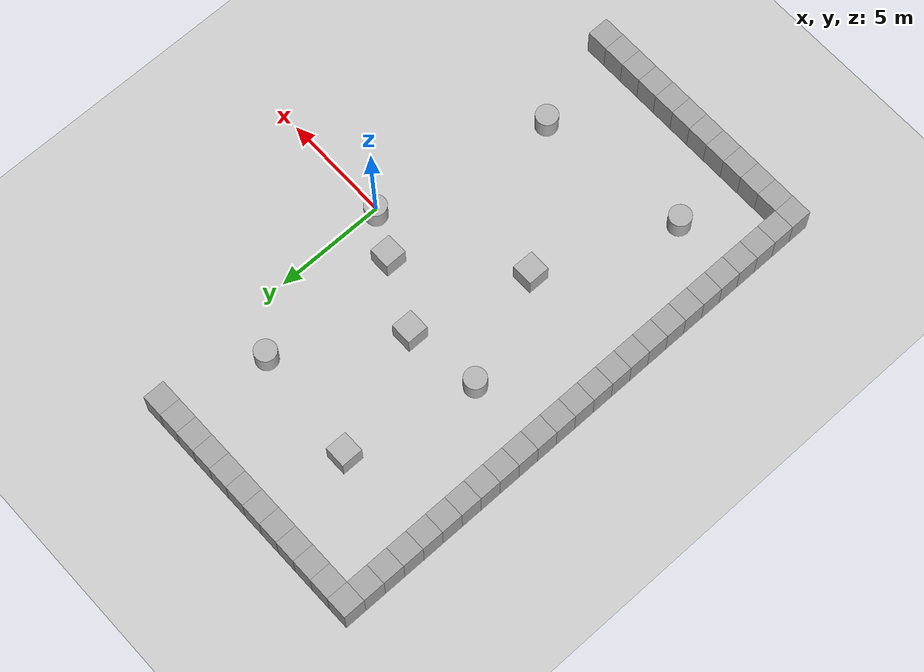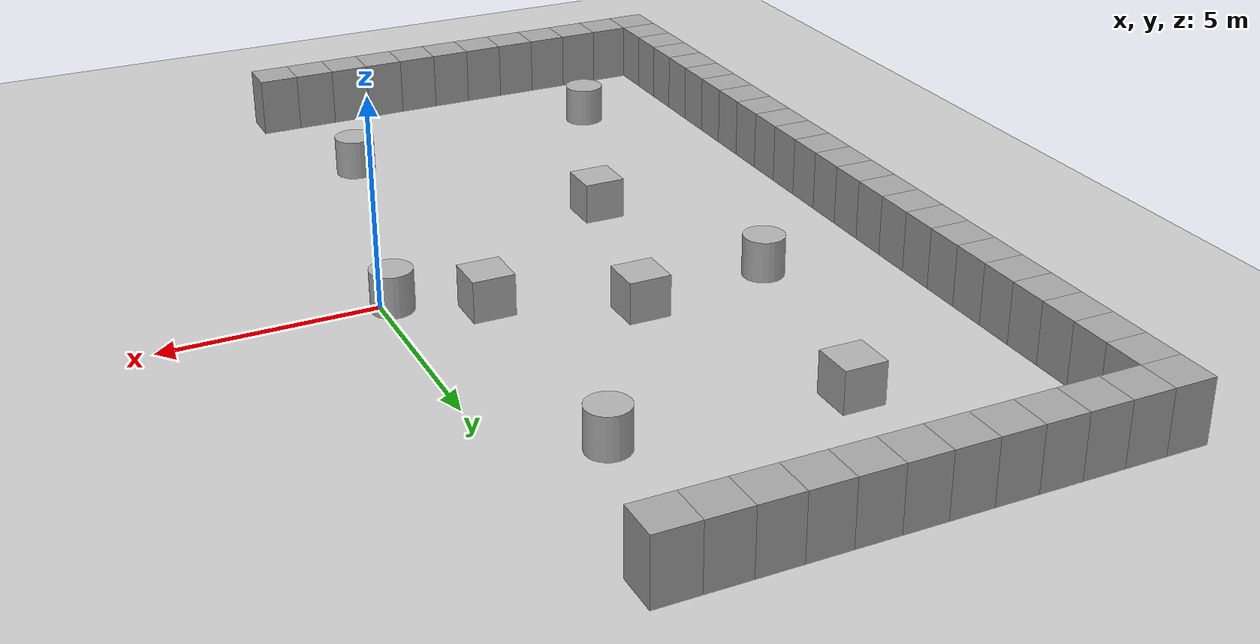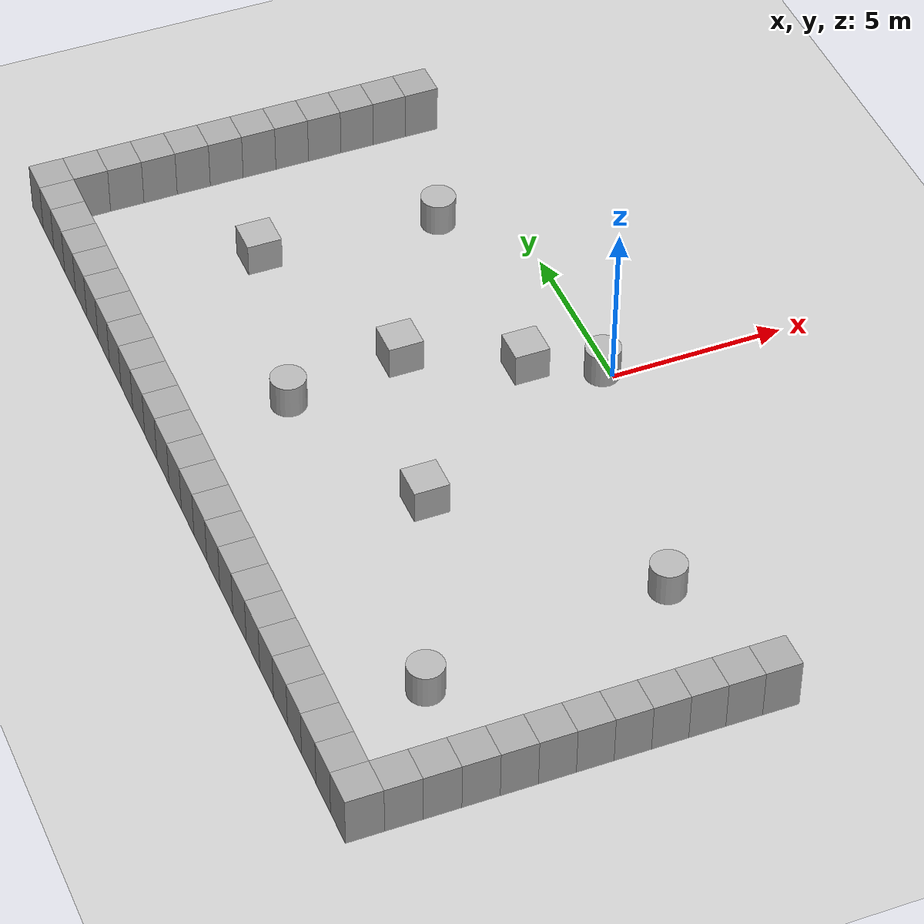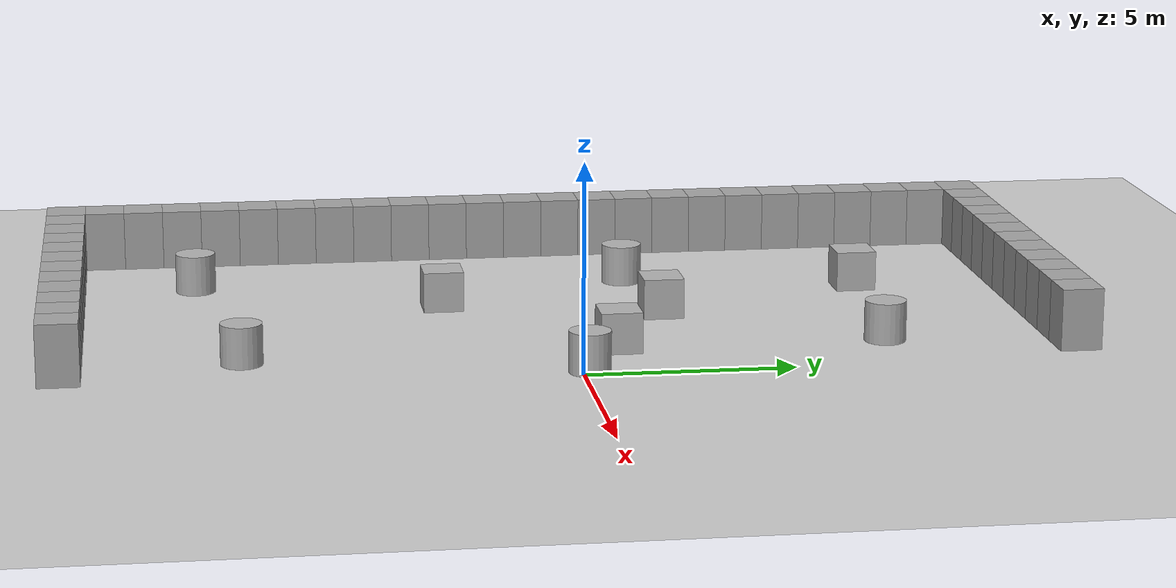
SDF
<sdf version="1.10">
 <world name="empty">
  <model name="ground_plane">
   <static>true</static>
   <link name="link">
    <collision name="collision">
     <geometry><plane><normal>0 0 1</normal><size>100 100</size></plane></geometry>
    </collision>
    <visual name="visual">
     <geometry><plane><normal>0 0 1</normal><size>100 100</size></plane></geometry>
     <material>
      <ambient>0.800000012 0.800000012 0.800000012 1</ambient>
      <diffuse>0.800000012 0.800000012 0.800000012 1</diffuse>
      <specular>0.800000012 0.800000012 0.800000012 1</specular>
     </material>
    </visual>
    <inertial>
     <mass>1</mass>
     <inertia><ixx>1</ixx><ixy>0</ixy><ixz>0</ixz><iyy>1</iyy><iyz>0</iyz><izz>1</izz></inertia>
    </inertial>
   </link>
  </model>
  <model name="box">
   <pose>-7.2664229478641413 8.001959563005741 0.5 0 0 0</pose>
   <link name="box_link">
    <inertial>
     <inertia><ixx>0.16666</ixx><ixy>0</ixy><ixz>0</ixz><iyy>0.16666</iyy><iyz>0</iyz><izz>0.16666</izz></inertia>
     <mass>1</mass>
    </inertial>
    <collision name="box_collision"><geometry><box><size>1 1 1</size></box></geometry></collision>
    <visual name="box_visual">
     <geometry><box><size>1 1 1</size></box></geometry>
     <material>
      <ambient>0.300000012 0.300000012 0.300000012 1</ambient>
      <diffuse>0.699999988 0.699999988 0.699999988 1</diffuse>
      <specular>1 1 1 1</specular>
     </material>
    </visual>
   </link>
   <static>false</static>
  </model>
  <model name="box_1_1">
   <pose>-2.0925876761833555 1.1406302052938266 0.5 0 0 0</pose>
   <link name="box_link">
    <inertial>
     <inertia><ixx>0.16666</ixx><ixy>0</ixy><ixz>0</ixz><iyy>0.16666</iyy><iyz>0</iyz><izz>0.16666</izz></inertia>
     <mass>1</mass>
    </inertial>
    <collision name="box_collision"><geometry><box><size>1 1 1</size></box></geometry></collision>
    <visual name="box_visual">
     <geometry><box><size>1 1 1</size></box></geometry>
     <material>
      <ambient>0.300000012 0.300000012 0.300000012 1</ambient>
      <diffuse>0.699999988 0.699999988 0.699999988 1</diffuse>
      <specular>1 1 1 1</specular>
     </material>
    </visual>
   </link>
   <static>false</static>
  </model>
  <model name="box_1_4">
   <pose>-6.5208503423678597 -2.643676608655257 0.5 0 0 0</pose>
   <link name="box_link">
    <inertial>
     <inertia><ixx>0.16666</ixx><ixy>0</ixy><ixz>0</ixz><iyy>0.16666</iyy><iyz>0</iyz><izz>0.16666</izz></inertia>
     <mass>1</mass>
    </inertial>
    <collision name="box_collision"><geometry><box><size>1 1 1</size></box></geometry></collision>
    <visual name="box_visual">
     <geometry><box><size>1 1 1</size></box></geometry>
     <material>
      <ambient>0.300000012 0.300000012 0.300000012 1</ambient>
      <diffuse>0.699999988 0.699999988 0.699999988 1</diffuse>
      <specular>1 1 1 1</specular>
     </material>
    </visual>
   </link>
   <static>false</static>
  </model>
  <model name="box_1_5">
   <pose>-5.1389123843084468 2.6679012426387785 0.5 0 0 0</pose>
   <link name="box_link">
    <inertial>
     <inertia><ixx>0.16666</ixx><ixy>0</ixy><ixz>0</ixz><iyy>0.16666</iyy><iyz>0</iyz><izz>0.16666</izz></inertia>
     <mass>1</mass>
    </inertial>
    <collision name="box_collision"><geometry><box><size>1 1 1</size></box></geometry></collision>
    <visual name="box_visual">
     <geometry><box><size>1 1 1</size></box></geometry>
     <material>
      <ambient>0.300000012 0.300000012 0.300000012 1</ambient>
      <diffuse>0.699999988 0.699999988 0.699999988 1</diffuse>
      <specular>1 1 1 1</specular>
     </material>
    </visual>
   </link>
   <static>false</static>
  </model>
  <model name="cylinder">
   <pose>-2.0379437450152151 7.5994624848365868 0.5 0 0 0</pose>
   <link name="cylinder_link">
    <inertial>
     <inertia>
      <ixx>0.14580000000000001</ixx>
      <ixy>0</ixy>
      <ixz>0</ixz>
      <iyy>0.14580000000000001</iyy>
      <iyz>0</iyz>
      <izz>0.125</izz>
     </inertia>
     <mass>1</mass>
    </inertial>
    <collision name="cylinder_collision">
     <geometry><cylinder><radius>0.5</radius><length>1</length></cylinder></geometry>
    </collision>
    <visual name="cylinder_visual">
     <geometry><cylinder><radius>0.5</radius><length>1</length></cylinder></geometry>
     <material>
      <ambient>0.300000012 0.300000012 0.300000012 1</ambient>
      <diffuse>0.699999988 0.699999988 0.699999988 1</diffuse>
      <specular>1 1 1 1</specular>
     </material>
    </visual>
   </link>
   <static>false</static>
  </model>
  <model name="cylinder_1">
   <pose>-8.5217671879853594 2.201041515387407 0.5 0 0 0</pose>
   <link name="cylinder_link">
    <inertial>
     <inertia>
      <ixx>0.14580000000000001</ixx>
      <ixy>0</ixy>
      <ixz>0</ixz>
      <iyy>0.14580000000000001</iyy>
      <iyz>0</iyz>
      <izz>0.125</izz>
     </inertia>
     <mass>1</mass>
    </inertial>
    <collision name="cylinder_collision">
     <geometry><cylinder><radius>0.5</radius><length>1</length></cylinder></geometry>
    </collision>
    <visual name="cylinder_visual">
     <geometry><cylinder><radius>0.5</radius><length>1</length></cylinder></geometry>
     <material>
      <ambient>0.300000012 0.300000012 0.300000012 1</ambient>
      <diffuse>0.699999988 0.699999988 0.699999988 1</diffuse>
      <specular>1 1 1 1</specular>
     </material>
    </visual>
   </link>
   <static>false</static>
  </model>
  <model name="cylinder_2">
   <pose>-1.9285283423070976 -7.792672292694327 0.5 0 0 0</pose>
   <link name="cylinder_link">
    <inertial>
     <inertia>
      <ixx>0.14580000000000001</ixx>
      <ixy>0</ixy>
      <ixz>0</ixz>
      <iyy>0.14580000000000001</iyy>
      <iyz>0</iyz>
      <izz>0.125</izz>
     </inertia>
     <mass>1</mass>
    </inertial>
    <collision name="cylinder_collision">
     <geometry><cylinder><radius>0.5</radius><length>1</length></cylinder></geometry>
    </collision>
    <visual name="cylinder_visual">
     <geometry><cylinder><radius>0.5</radius><length>1</length></cylinder></geometry>
     <material>
      <ambient>0.300000012 0.300000012 0.300000012 1</ambient>
      <diffuse>0.699999988 0.699999988 0.699999988 1</diffuse>
      <specular>1 1 1 1</specular>
     </material>
    </visual>
   </link>
   <static>false</static>
  </model>
  <model name="cylinder_3">
   <pose>-0.23170090689891465 0.17372997756641428 0.5 0 0 0</pose>
   <link name="cylinder_link">
    <inertial>
     <inertia>
      <ixx>0.14580000000000001</ixx>
      <ixy>0</ixy>
      <ixz>0</ixz>
      <iyy>0.14580000000000001</iyy>
      <iyz>0</iyz>
      <izz>0.125</izz>
     </inertia>
     <mass>1</mass>
    </inertial>
    <collision name="cylinder_collision">
     <geometry><cylinder><radius>0.5</radius><length>1</length></cylinder></geometry>
    </collision>
    <visual name="cylinder_visual">
     <geometry><cylinder><radius>0.5</radius><length>1</length></cylinder></geometry>
     <material>
      <ambient>0.300000012 0.300000012 0.300000012 1</ambient>
      <diffuse>0.699999988 0.699999988 0.699999988 1</diffuse>
      <specular>1 1 1 1</specular>
     </material>
    </visual>
   </link>
   <static>false</static>
  </model>
  <model name="cylinder_5">
   <pose>-8.9233435822444385 -8.7101261716177483 0.5 0 0 0</pose>
   <link name="cylinder_link">
    <inertial>
     <inertia>
      <ixx>0.14580000000000001</ixx>
      <ixy>0</ixy>
      <ixz>0</ixz>
      <iyy>0.14580000000000001</iyy>
      <iyz>0</iyz>
      <izz>0.125</izz>
     </inertia>
     <mass>1</mass>
    </inertial>
    <collision name="cylinder_collision">
     <geometry><cylinder><radius>0.5</radius><length>1</length></cylinder></geometry>
    </collision>
    <visual name="cylinder_visual">
     <geometry><cylinder><radius>0.5</radius><length>1</length></cylinder></geometry>
     <material>
      <ambient>0.300000012 0.300000012 0.300000012 1</ambient>
      <diffuse>0.699999988 0.699999988 0.699999988 1</diffuse>
      <specular>1 1 1 1</specular>
     </material>
    </visual>
   </link>
   <static>false</static>
  </model>
  <model name="wall_box_0">
   <static>true</static>
   <pose>-12.0 -12.0 0.75 0 0 0</pose>
   <link name="link">
    <collision name="collision"><geometry><box><size>1.0 1.0 1.5</size></box></geometry></collision>
    <visual name="visual">
     <geometry><box><size>1.0 1.0 1.5</size></box></geometry>
     <material>
      <ambient>0.55 0.55 0.55 1</ambient>
      <diffuse>0.65 0.65 0.65 1</diffuse>
      <specular>0.3 0.3 0.3 1</specular>
     </material>
    </visual>
   </link>
  </model>
  <model name="wall_box_1">
   <static>true</static>
   <pose>-12.0 -11.0 0.75 0 0 0</pose>
   <link name="link">
    <collision name="collision"><geometry><box><size>1.0 1.0 1.5</size></box></geometry></collision>
    <visual name="visual">
     <geometry><box><size>1.0 1.0 1.5</size></box></geometry>
     <material>
      <ambient>0.55 0.55 0.55 1</ambient>
      <diffuse>0.65 0.65 0.65 1</diffuse>
      <specular>0.3 0.3 0.3 1</specular>
     </material>
    </visual>
   </link>
  </model>
  <model name="wall_box_2">
   <static>true</static>
   <pose>-12.0 -10.0 0.75 0 0 0</pose>
   <link name="link">
    <collision name="collision"><geometry><box><size>1.0 1.0 1.5</size></box></geometry></collision>
    <visual name="visual">
     <geometry><box><size>1.0 1.0 1.5</size></box></geometry>
     <material>
      <ambient>0.55 0.55 0.55 1</ambient>
      <diffuse>0.65 0.65 0.65 1</diffuse>
      <specular>0.3 0.3 0.3 1</specular>
     </material>
    </visual>
   </link>
  </model>
  <model name="wall_box_3">
   <static>true</static>
   <pose>-12.0 -9.0 0.75 0 0 0</pose>
   <link name="link">
    <collision name="collision"><geometry><box><size>1.0 1.0 1.5</size></box></geometry></collision>
    <visual name="visual">
     <geometry><box><size>1.0 1.0 1.5</size></box></geometry>
     <material>
      <ambient>0.55 0.55 0.55 1</ambient>
      <diffuse>0.65 0.65 0.65 1</diffuse>
      <specular>0.3 0.3 0.3 1</specular>
     </material>
    </visual>
   </link>
  </model>
  <model name="wall_box_4">
   <static>true</static>
   <pose>-12.0 -8.0 0.75 0 0 0</pose>
   <link name="link">
    <collision name="collision"><geometry><box><size>1.0 1.0 1.5</size></box></geometry></collision>
    <visual name="visual">
     <geometry><box><size>1.0 1.0 1.5</size></box></geometry>
     <material>
      <ambient>0.55 0.55 0.55 1</ambient>
      <diffuse>0.65 0.65 0.65 1</diffuse>
      <specular>0.3 0.3 0.3 1</specular>
     </material>
    </visual>
   </link>
  </model>
  <model name="wall_box_5">
   <static>true</static>
   <pose>-12.0 -7.0 0.75 0 0 0</pose>
   <link name="link">
    <collision name="collision"><geometry><box><size>1.0 1.0 1.5</size></box></geometry></collision>
    <visual name="visual">
     <geometry><box><size>1.0 1.0 1.5</size></box></geometry>
     <material>
      <ambient>0.55 0.55 0.55 1</ambient>
      <diffuse>0.65 0.65 0.65 1</diffuse>
      <specular>0.3 0.3 0.3 1</specular>
     </material>
    </visual>
   </link>
  </model>
  <model name="wall_box_6">
   <static>true</static>
   <pose>-12.0 -6.0 0.75 0 0 0</pose>
   <link name="link">
    <collision name="collision"><geometry><box><size>1.0 1.0 1.5</size></box></geometry></collision>
    <visual name="visual">
     <geometry><box><size>1.0 1.0 1.5</size></box></geometry>
     <material>
      <ambient>0.55 0.55 0.55 1</ambient>
      <diffuse>0.65 0.65 0.65 1</diffuse>
      <specular>0.3 0.3 0.3 1</specular>
     </material>
    </visual>
   </link>
  </model>
  <model name="wall_box_7">
   <static>true</static>
   <pose>-12.0 -5.0 0.75 0 0 0</pose>
   <link name="link">
    <collision name="collision"><geometry><box><size>1.0 1.0 1.5</size></box></geometry></collision>
    <visual name="visual">
     <geometry><box><size>1.0 1.0 1.5</size></box></geometry>
     <material>
      <ambient>0.55 0.55 0.55 1</ambient>
      <diffuse>0.65 0.65 0.65 1</diffuse>
      <specular>0.3 0.3 0.3 1</specular>
     </material>
    </visual>
   </link>
  </model>
  <model name="wall_box_8">
   <static>true</static>
   <pose>-12.0 -4.0 0.75 0 0 0</pose>
   <link name="link">
    <collision name="collision"><geometry><box><size>1.0 1.0 1.5</size></box></geometry></collision>
    <visual name="visual">
     <geometry><box><size>1.0 1.0 1.5</size></box></geometry>
     <material>
      <ambient>0.55 0.55 0.55 1</ambient>
      <diffuse>0.65 0.65 0.65 1</diffuse>
      <specular>0.3 0.3 0.3 1</specular>
     </material>
    </visual>
   </link>
  </model>
  <model name="wall_box_9">
   <static>true</static>
   <pose>-12.0 -3.0 0.75 0 0 0</pose>
   <link name="link">
    <collision name="collision"><geometry><box><size>1.0 1.0 1.5</size></box></geometry></collision>
    <visual name="visual">
     <geometry><box><size>1.0 1.0 1.5</size></box></geometry>
     <material>
      <ambient>0.55 0.55 0.55 1</ambient>
      <diffuse>0.65 0.65 0.65 1</diffuse>
      <specular>0.3 0.3 0.3 1</specular>
     </material>
    </visual>
   </link>
  </model>
  <model name="wall_box_10">
   <static>true</static>
   <pose>-12.0 -2.0 0.75 0 0 0</pose>
   <link name="link">
    <collision name="collision"><geometry><box><size>1.0 1.0 1.5</size></box></geometry></collision>
    <visual name="visual">
     <geometry><box><size>1.0 1.0 1.5</size></box></geometry>
     <material>
      <ambient>0.55 0.55 0.55 1</ambient>
      <diffuse>0.65 0.65 0.65 1</diffuse>
      <specular>0.3 0.3 0.3 1</specular>
     </material>
    </visual>
   </link>
  </model>
  <model name="wall_box_11">
   <static>true</static>
   <pose>-12.0 -1.0 0.75 0 0 0</pose>
   <link name="link">
    <collision name="collision"><geometry><box><size>1.0 1.0 1.5</size></box></geometry></collision>
    <visual name="visual">
     <geometry><box><size>1.0 1.0 1.5</size></box></geometry>
     <material>
      <ambient>0.55 0.55 0.55 1</ambient>
      <diffuse>0.65 0.65 0.65 1</diffuse>
      <specular>0.3 0.3 0.3 1</specular>
     </material>
    </visual>
   </link>
  </model>
  <model name="wall_box_12">
   <static>true</static>
   <pose>-12.0 0.0 0.75 0 0 0</pose>
   <link name="link">
    <collision name="collision"><geometry><box><size>1.0 1.0 1.5</size></box></geometry></collision>
    <visual name="visual">
     <geometry><box><size>1.0 1.0 1.5</size></box></geometry>
     <material>
      <ambient>0.55 0.55 0.55 1</ambient>
      <diffuse>0.65 0.65 0.65 1</diffuse>
      <specular>0.3 0.3 0.3 1</specular>
     </material>
    </visual>
   </link>
  </model>
  <model name="wall_box_13">
   <static>true</static>
   <pose>-12.0 1.0 0.75 0 0 0</pose>
   <link name="link">
    <collision name="collision"><geometry><box><size>1.0 1.0 1.5</size></box></geometry></collision>
    <visual name="visual">
     <geometry><box><size>1.0 1.0 1.5</size></box></geometry>
     <material>
      <ambient>0.55 0.55 0.55 1</ambient>
      <diffuse>0.65 0.65 0.65 1</diffuse>
      <specular>0.3 0.3 0.3 1</specular>
     </material>
    </visual>
   </link>
  </model>
  <model name="wall_box_14">
   <static>true</static>
   <pose>-12.0 2.0 0.75 0 0 0</pose>
   <link name="link">
    <collision name="collision"><geometry><box><size>1.0 1.0 1.5</size></box></geometry></collision>
    <visual name="visual">
     <geometry><box><size>1.0 1.0 1.5</size></box></geometry>
     <material>
      <ambient>0.55 0.55 0.55 1</ambient>
      <diffuse>0.65 0.65 0.65 1</diffuse>
      <specular>0.3 0.3 0.3 1</specular>
     </material>
    </visual>
   </link>
  </model>
  <model name="wall_box_15">
   <static>true</static>
   <pose>-12.0 3.0 0.75 0 0 0</pose>
   <link name="link">
    <collision name="collision"><geometry><box><size>1.0 1.0 1.5</size></box></geometry></collision>
    <visual name="visual">
     <geometry><box><size>1.0 1.0 1.5</size></box></geometry>
     <material>
      <ambient>0.55 0.55 0.55 1</ambient>
      <diffuse>0.65 0.65 0.65 1</diffuse>
      <specular>0.3 0.3 0.3 1</specular>
     </material>
    </visual>
   </link>
  </model>
  <model name="wall_box_16">
   <static>true</static>
   <pose>-12.0 4.0 0.75 0 0 0</pose>
   <link name="link">
    <collision name="collision"><geometry><box><size>1.0 1.0 1.5</size></box></geometry></collision>
    <visual name="visual">
     <geometry><box><size>1.0 1.0 1.5</size></box></geometry>
     <material>
      <ambient>0.55 0.55 0.55 1</ambient>
      <diffuse>0.65 0.65 0.65 1</diffuse>
      <specular>0.3 0.3 0.3 1</specular>
     </material>
    </visual>
   </link>
  </model>
  <model name="wall_box_17">
   <static>true</static>
   <pose>-12.0 5.0 0.75 0 0 0</pose>
   <link name="link">
    <collision name="collision"><geometry><box><size>1.0 1.0 1.5</size></box></geometry></collision>
    <visual name="visual">
     <geometry><box><size>1.0 1.0 1.5</size></box></geometry>
     <material>
      <ambient>0.55 0.55 0.55 1</ambient>
      <diffuse>0.65 0.65 0.65 1</diffuse>
      <specular>0.3 0.3 0.3 1</specular>
     </material>
    </visual>
   </link>
  </model>
  <model name="wall_box_18">
   <static>true</static>
   <pose>-12.0 6.0 0.75 0 0 0</pose>
   <link name="link">
    <collision name="collision"><geometry><box><size>1.0 1.0 1.5</size></box></geometry></collision>
    <visual name="visual">
     <geometry><box><size>1.0 1.0 1.5</size></box></geometry>
     <material>
      <ambient>0.55 0.55 0.55 1</ambient>
      <diffuse>0.65 0.65 0.65 1</diffuse>
      <specular>0.3 0.3 0.3 1</specular>
     </material>
    </visual>
   </link>
  </model>
  <model name="wall_box_19">
   <static>true</static>
   <pose>-12.0 7.0 0.75 0 0 0</pose>
   <link name="link">
    <collision name="collision"><geometry><box><size>1.0 1.0 1.5</size></box></geometry></collision>
    <visual name="visual">
     <geometry><box><size>1.0 1.0 1.5</size></box></geometry>
     <material>
      <ambient>0.55 0.55 0.55 1</ambient>
      <diffuse>0.65 0.65 0.65 1</diffuse>
      <specular>0.3 0.3 0.3 1</specular>
     </material>
    </visual>
   </link>
  </model>
  <model name="wall_box_20">
   <static>true</static>
   <pose>-12.0 8.0 0.75 0 0 0</pose>
   <link name="link">
    <collision name="collision"><geometry><box><size>1.0 1.0 1.5</size></box></geometry></collision>
    <visual name="visual">
     <geometry><box><size>1.0 1.0 1.5</size></box></geometry>
     <material>
      <ambient>0.55 0.55 0.55 1</ambient>
      <diffuse>0.65 0.65 0.65 1</diffuse>
      <specular>0.3 0.3 0.3 1</specular>
     </material>
    </visual>
   </link>
  </model>
  <model name="wall_box_21">
   <static>true</static>
   <pose>-12.0 9.0 0.75 0 0 0</pose>
   <link name="link">
    <collision name="collision"><geometry><box><size>1.0 1.0 1.5</size></box></geometry></collision>
    <visual name="visual">
     <geometry><box><size>1.0 1.0 1.5</size></box></geometry>
     <material>
      <ambient>0.55 0.55 0.55 1</ambient>
      <diffuse>0.65 0.65 0.65 1</diffuse>
      <specular>0.3 0.3 0.3 1</specular>
     </material>
    </visual>
   </link>
  </model>
  <model name="wall_box_22">
   <static>true</static>
   <pose>-12.0 10.0 0.75 0 0 0</pose>
   <link name="link">
    <collision name="collision"><geometry><box><size>1.0 1.0 1.5</size></box></geometry></collision>
    <visual name="visual">
     <geometry><box><size>1.0 1.0 1.5</size></box></geometry>
     <material>
      <ambient>0.55 0.55 0.55 1</ambient>
      <diffuse>0.65 0.65 0.65 1</diffuse>
      <specular>0.3 0.3 0.3 1</specular>
     </material>
    </visual>
   </link>
  </model>
  <model name="wall_box_23">
   <static>true</static>
   <pose>-12.0 11.0 0.75 0 0 0</pose>
   <link name="link">
    <collision name="collision"><geometry><box><size>1.0 1.0 1.5</size></box></geometry></collision>
    <visual name="visual">
     <geometry><box><size>1.0 1.0 1.5</size></box></geometry>
     <material>
      <ambient>0.55 0.55 0.55 1</ambient>
      <diffuse>0.65 0.65 0.65 1</diffuse>
      <specular>0.3 0.3 0.3 1</specular>
     </material>
    </visual>
   </link>
  </model>
  <model name="wall_box_24">
   <static>true</static>
   <pose>-12.0 12.0 0.75 0 0 0</pose>
   <link name="link">
    <collision name="collision"><geometry><box><size>1.0 1.0 1.5</size></box></geometry></collision>
    <visual name="visual">
     <geometry><box><size>1.0 1.0 1.5</size></box></geometry>
     <material>
      <ambient>0.55 0.55 0.55 1</ambient>
      <diffuse>0.65 0.65 0.65 1</diffuse>
      <specular>0.3 0.3 0.3 1</specular>
     </material>
    </visual>
   </link>
  </model>
  <model name="wall_box_25">
   <static>true</static>
   <pose>-11.0 -12.0 0.75 0 0 0</pose>
   <link name="link">
    <collision name="collision"><geometry><box><size>1.0 1.0 1.5</size></box></geometry></collision>
    <visual name="visual">
     <geometry><box><size>1.0 1.0 1.5</size></box></geometry>
     <material>
      <ambient>0.55 0.55 0.55 1</ambient>
      <diffuse>0.65 0.65 0.65 1</diffuse>
      <specular>0.3 0.3 0.3 1</specular>
     </material>
    </visual>
   </link>
  </model>
  <model name="wall_box_26">
   <static>true</static>
   <pose>-11.0 12.0 0.75 0 0 0</pose>
   <link name="link">
    <collision name="collision"><geometry><box><size>1.0 1.0 1.5</size></box></geometry></collision>
    <visual name="visual">
     <geometry><box><size>1.0 1.0 1.5</size></box></geometry>
     <material>
      <ambient>0.55 0.55 0.55 1</ambient>
      <diffuse>0.65 0.65 0.65 1</diffuse>
      <specular>0.3 0.3 0.3 1</specular>
     </material>
    </visual>
   </link>
  </model>
  <model name="wall_box_27">
   <static>true</static>
   <pose>-10.0 -12.0 0.75 0 0 0</pose>
   <link name="link">
    <collision name="collision"><geometry><box><size>1.0 1.0 1.5</size></box></geometry></collision>
    <visual name="visual">
     <geometry><box><size>1.0 1.0 1.5</size></box></geometry>
     <material>
      <ambient>0.55 0.55 0.55 1</ambient>
      <diffuse>0.65 0.65 0.65 1</diffuse>
      <specular>0.3 0.3 0.3 1</specular>
     </material>
    </visual>
   </link>
  </model>
  <model name="wall_box_28">
   <static>true</static>
   <pose>-10.0 12.0 0.75 0 0 0</pose>
   <link name="link">
    <collision name="collision"><geometry><box><size>1.0 1.0 1.5</size></box></geometry></collision>
    <visual name="visual">
     <geometry><box><size>1.0 1.0 1.5</size></box></geometry>
     <material>
      <ambient>0.55 0.55 0.55 1</ambient>
      <diffuse>0.65 0.65 0.65 1</diffuse>
      <specular>0.3 0.3 0.3 1</specular>
     </material>
    </visual>
   </link>
  </model>
  <model name="wall_box_29">
   <static>true</static>
   <pose>-9.0 -12.0 0.75 0 0 0</pose>
   <link name="link">
    <collision name="collision"><geometry><box><size>1.0 1.0 1.5</size></box></geometry></collision>
    <visual name="visual">
     <geometry><box><size>1.0 1.0 1.5</size></box></geometry>
     <material>
      <ambient>0.55 0.55 0.55 1</ambient>
      <diffuse>0.65 0.65 0.65 1</diffuse>
      <specular>0.3 0.3 0.3 1</specular>
     </material>
    </visual>
   </link>
  </model>
  <model name="wall_box_30">
   <static>true</static>
   <pose>-9.0 12.0 0.75 0 0 0</pose>
   <link name="link">
    <collision name="collision"><geometry><box><size>1.0 1.0 1.5</size></box></geometry></collision>
    <visual name="visual">
     <geometry><box><size>1.0 1.0 1.5</size></box></geometry>
     <material>
      <ambient>0.55 0.55 0.55 1</ambient>
      <diffuse>0.65 0.65 0.65 1</diffuse>
      <specular>0.3 0.3 0.3 1</specular>
     </material>
    </visual>
   </link>
  </model>
  <model name="wall_box_31">
   <static>true</static>
   <pose>-8.0 -12.0 0.75 0 0 0</pose>
   <link name="link">
    <collision name="collision"><geometry><box><size>1.0 1.0 1.5</size></box></geometry></collision>
    <visual name="visual">
     <geometry><box><size>1.0 1.0 1.5</size></box></geometry>
     <material>
      <ambient>0.55 0.55 0.55 1</ambient>
      <diffuse>0.65 0.65 0.65 1</diffuse>
      <specular>0.3 0.3 0.3 1</specular>
     </material>
    </visual>
   </link>
  </model>
  <model name="wall_box_32">
   <static>true</static>
   <pose>-8.0 12.0 0.75 0 0 0</pose>
   <link name="link">
    <collision name="collision"><geometry><box><size>1.0 1.0 1.5</size></box></geometry></collision>
    <visual name="visual">
     <geometry><box><size>1.0 1.0 1.5</size></box></geometry>
     <material>
      <ambient>0.55 0.55 0.55 1</ambient>
      <diffuse>0.65 0.65 0.65 1</diffuse>
      <specular>0.3 0.3 0.3 1</specular>
     </material>
    </visual>
   </link>
  </model>
  <model name="wall_box_33">
   <static>true</static>
   <pose>-7.0 -12.0 0.75 0 0 0</pose>
   <link name="link">
    <collision name="collision"><geometry><box><size>1.0 1.0 1.5</size></box></geometry></collision>
    <visual name="visual">
     <geometry><box><size>1.0 1.0 1.5</size></box></geometry>
     <material>
      <ambient>0.55 0.55 0.55 1</ambient>
      <diffuse>0.65 0.65 0.65 1</diffuse>
      <specular>0.3 0.3 0.3 1</specular>
     </material>
    </visual>
   </link>
  </model>
  <model name="wall_box_34">
   <static>true</static>
   <pose>-7.0 12.0 0.75 0 0 0</pose>
   <link name="link">
    <collision name="collision"><geometry><box><size>1.0 1.0 1.5</size></box></geometry></collision>
    <visual name="visual">
     <geometry><box><size>1.0 1.0 1.5</size></box></geometry>
     <material>
      <ambient>0.55 0.55 0.55 1</ambient>
      <diffuse>0.65 0.65 0.65 1</diffuse>
      <specular>0.3 0.3 0.3 1</specular>
     </material>
    </visual>
   </link>
  </model>
  <model name="wall_box_35">
   <static>true</static>
   <pose>-6.0 -12.0 0.75 0 0 0</pose>
   <link name="link">
    <collision name="collision"><geometry><box><size>1.0 1.0 1.5</size></box></geometry></collision>
    <visual name="visual">
     <geometry><box><size>1.0 1.0 1.5</size></box></geometry>
     <material>
      <ambient>0.55 0.55 0.55 1</ambient>
      <diffuse>0.65 0.65 0.65 1</diffuse>
      <specular>0.3 0.3 0.3 1</specular>
     </material>
    </visual>
   </link>
  </model>
  <model name="wall_box_36">
   <static>true</static>
   <pose>-6.0 12.0 0.75 0 0 0</pose>
   <link name="link">
    <collision name="collision"><geometry><box><size>1.0 1.0 1.5</size></box></geometry></collision>
    <visual name="visual">
     <geometry><box><size>1.0 1.0 1.5</size></box></geometry>
     <material>
      <ambient>0.55 0.55 0.55 1</ambient>
      <diffuse>0.65 0.65 0.65 1</diffuse>
      <specular>0.3 0.3 0.3 1</specular>
     </material>
    </visual>
   </link>
  </model>
  <model name="wall_box_37">
   <static>true</static>
   <pose>-5.0 -12.0 0.75 0 0 0</pose>
   <link name="link">
    <collision name="collision"><geometry><box><size>1.0 1.0 1.5</size></box></geometry></collision>
    <visual name="visual">
     <geometry><box><size>1.0 1.0 1.5</size></box></geometry>
     <material>
      <ambient>0.55 0.55 0.55 1</ambient>
      <diffuse>0.65 0.65 0.65 1</diffuse>
      <specular>0.3 0.3 0.3 1</specular>
     </material>
    </visual>
   </link>
  </model>
  <model name="wall_box_38">
   <static>true</static>
   <pose>-5.0 12.0 0.75 0 0 0</pose>
   <link name="link">
    <collision name="collision"><geometry><box><size>1.0 1.0 1.5</size></box></geometry></collision>
    <visual name="visual">
     <geometry><box><size>1.0 1.0 1.5</size></box></geometry>
     <material>
      <ambient>0.55 0.55 0.55 1</ambient>
      <diffuse>0.65 0.65 0.65 1</diffuse>
      <specular>0.3 0.3 0.3 1</specular>
     </material>
    </visual>
   </link>
  </model>
  <model name="wall_box_39">
   <static>true</static>
   <pose>-4.0 -12.0 0.75 0 0 0</pose>
   <link name="link">
    <collision name="collision"><geometry><box><size>1.0 1.0 1.5</size></box></geometry></collision>
    <visual name="visual">
     <geometry><box><size>1.0 1.0 1.5</size></box></geometry>
     <material>
      <ambient>0.55 0.55 0.55 1</ambient>
      <diffuse>0.65 0.65 0.65 1</diffuse>
      <specular>0.3 0.3 0.3 1</specular>
     </material>
    </visual>
   </link>
  </model>
  <model name="wall_box_40">
   <static>true</static>
   <pose>-4.0 12.0 0.75 0 0 0</pose>
   <link name="link">
    <collision name="collision"><geometry><box><size>1.0 1.0 1.5</size></box></geometry></collision>
    <visual name="visual">
     <geometry><box><size>1.0 1.0 1.5</size></box></geometry>
     <material>
      <ambient>0.55 0.55 0.55 1</ambient>
      <diffuse>0.65 0.65 0.65 1</diffuse>
      <specular>0.3 0.3 0.3 1</specular>
     </material>
    </visual>
   </link>
  </model>
  <model name="wall_box_41">
   <static>true</static>
   <pose>-3.0 -12.0 0.75 0 0 0</pose>
   <link name="link">
    <collision name="collision"><geometry><box><size>1.0 1.0 1.5</size></box></geometry></collision>
    <visual name="visual">
     <geometry><box><size>1.0 1.0 1.5</size></box></geometry>
     <material>
      <ambient>0.55 0.55 0.55 1</ambient>
      <diffuse>0.65 0.65 0.65 1</diffuse>
      <specular>0.3 0.3 0.3 1</specular>
     </material>
    </visual>
   </link>
  </model>
  <model name="wall_box_42">
   <static>true</static>
   <pose>-3.0 12.0 0.75 0 0 0</pose>
   <link name="link">
    <collision name="collision"><geometry><box><size>1.0 1.0 1.5</size></box></geometry></collision>
    <visual name="visual">
     <geometry><box><size>1.0 1.0 1.5</size></box></geometry>
     <material>
      <ambient>0.55 0.55 0.55 1</ambient>
      <diffuse>0.65 0.65 0.65 1</diffuse>
      <specular>0.3 0.3 0.3 1</specular>
     </material>
    </visual>
   </link>
  </model>
  <model name="wall_box_43">
   <static>true</static>
   <pose>-2.0 -12.0 0.75 0 0 0</pose>
   <link name="link">
    <collision name="collision"><geometry><box><size>1.0 1.0 1.5</size></box></geometry></collision>
    <visual name="visual">
     <geometry><box><size>1.0 1.0 1.5</size></box></geometry>
     <material>
      <ambient>0.55 0.55 0.55 1</ambient>
      <diffuse>0.65 0.65 0.65 1</diffuse>
      <specular>0.3 0.3 0.3 1</specular>
     </material>
    </visual>
   </link>
  </model>
  <model name="wall_box_44">
   <static>true</static>
   <pose>-2.0 12.0 0.75 0 0 0</pose>
   <link name="link">
    <collision name="collision"><geometry><box><size>1.0 1.0 1.5</size></box></geometry></collision>
    <visual name="visual">
     <geometry><box><size>1.0 1.0 1.5</size></box></geometry>
     <material>
      <ambient>0.55 0.55 0.55 1</ambient>
      <diffuse>0.65 0.65 0.65 1</diffuse>
      <specular>0.3 0.3 0.3 1</specular>
     </material>
    </visual>
   </link>
  </model>
  <model name="wall_box_45">
   <static>true</static>
   <pose>-1.0 -12.0 0.75 0 0 0</pose>
   <link name="link">
    <collision name="collision"><geometry><box><size>1.0 1.0 1.5</size></box></geometry></collision>
    <visual name="visual">
     <geometry><box><size>1.0 1.0 1.5</size></box></geometry>
     <material>
      <ambient>0.55 0.55 0.55 1</ambient>
      <diffuse>0.65 0.65 0.65 1</diffuse>
      <specular>0.3 0.3 0.3 1</specular>
     </material>
    </visual>
   </link>
  </model>
  <model name="wall_box_46">
   <static>true</static>
   <pose>-1.0 12.0 0.75 0 0 0</pose>
   <link name="link">
    <collision name="collision"><geometry><box><size>1.0 1.0 1.5</size></box></geometry></collision>
    <visual name="visual">
     <geometry><box><size>1.0 1.0 1.5</size></box></geometry>
     <material>
      <ambient>0.55 0.55 0.55 1</ambient>
      <diffuse>0.65 0.65 0.65 1</diffuse>
      <specular>0.3 0.3 0.3 1</specular>
     </material>
    </visual>
   </link>
  </model>
 </world>
</sdf>
